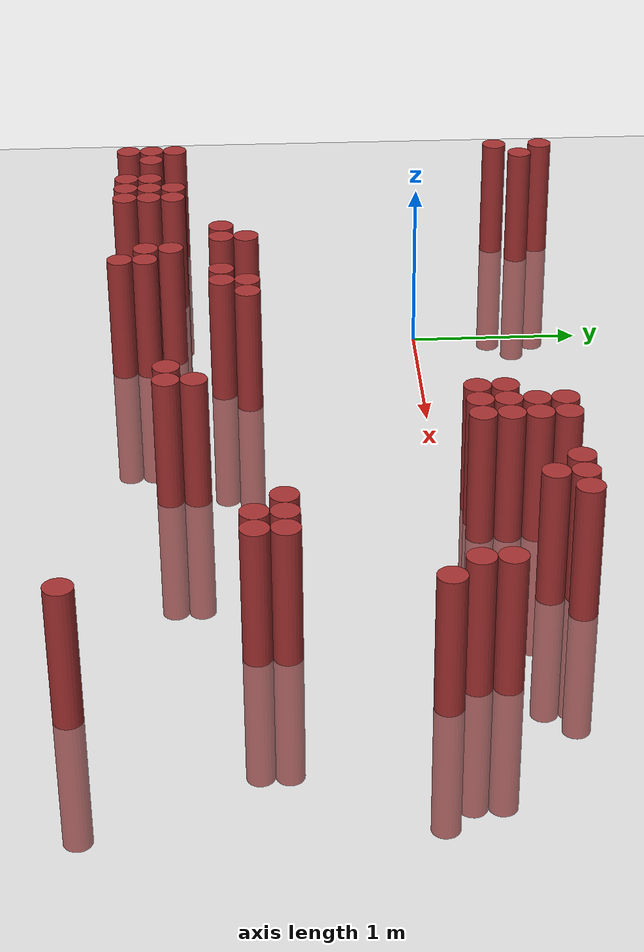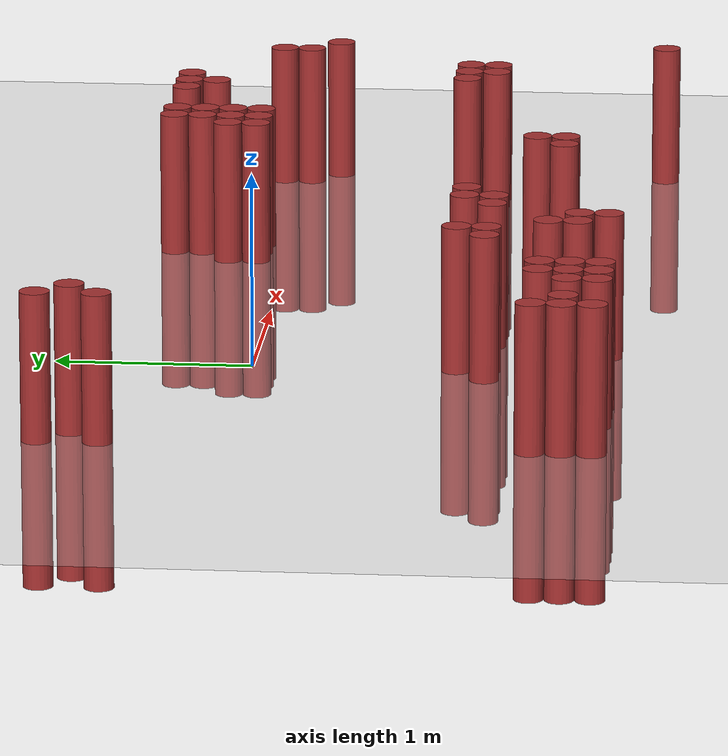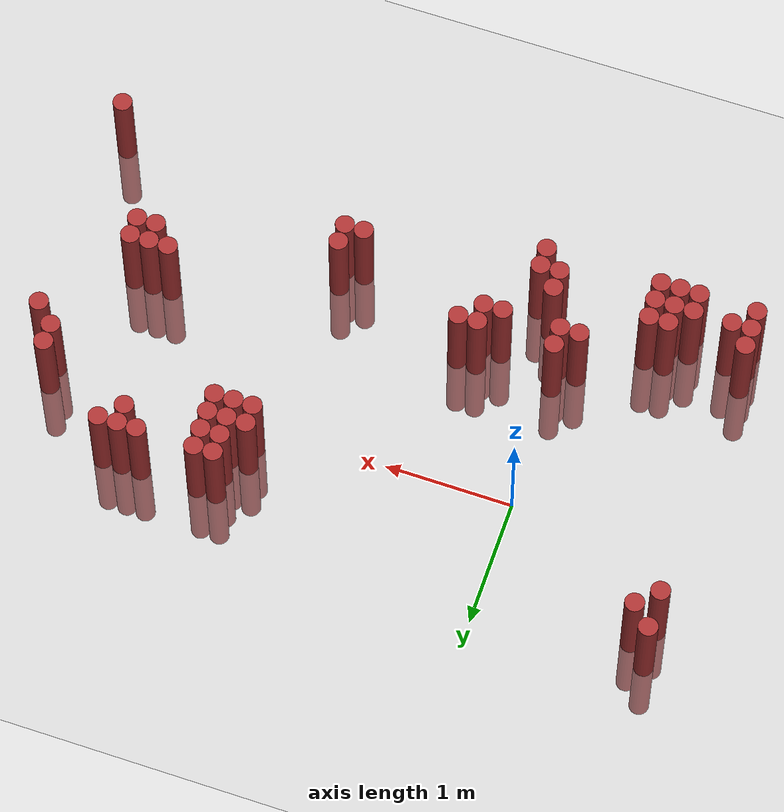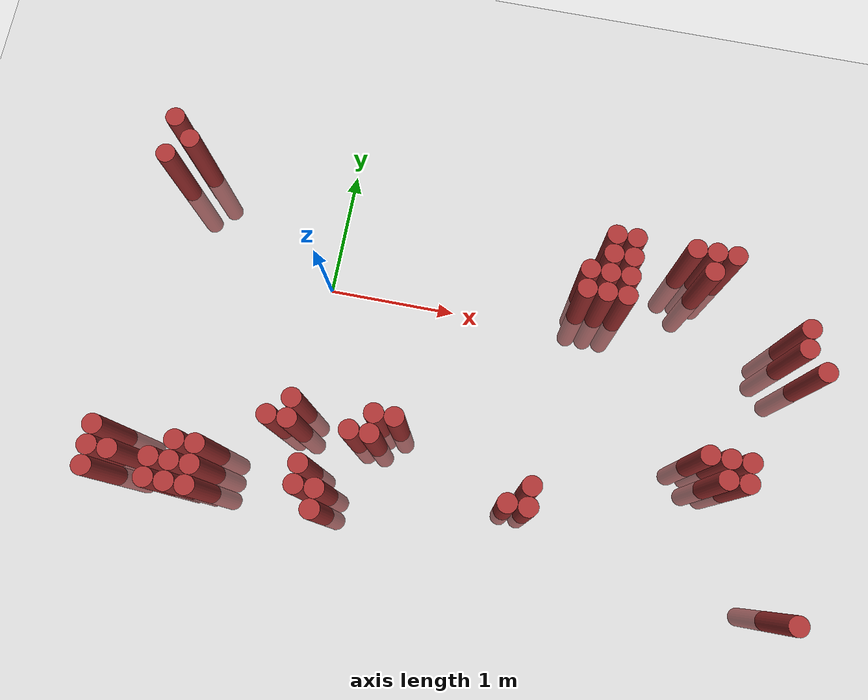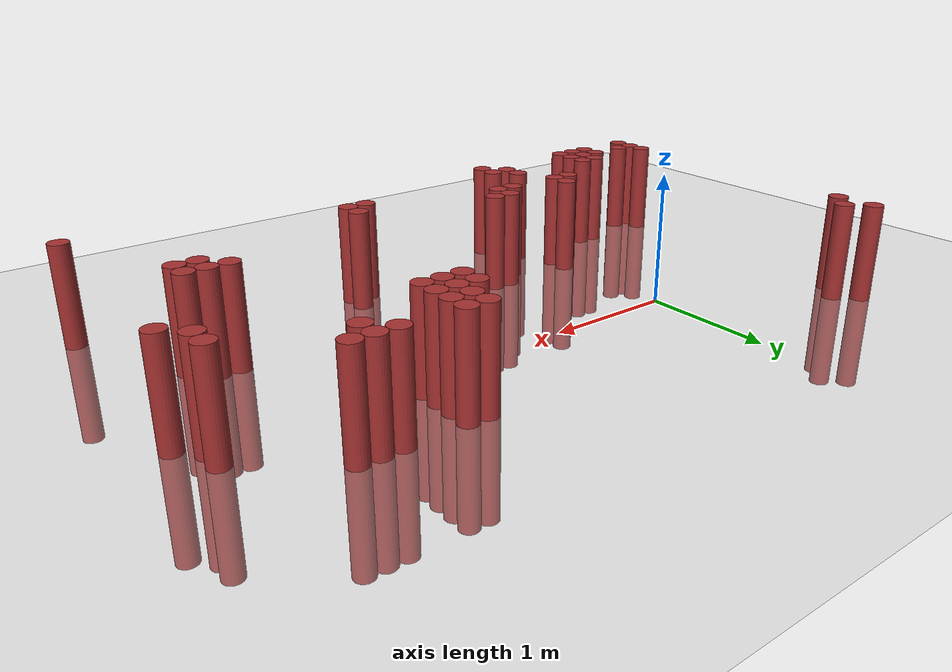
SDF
<sdf version="1.6">
 <world name="default">
  <model name="ground_plane">
   <static>1</static>
   <link name="link">
    <collision name="collision">
     <geometry><plane><normal>0 0 1</normal><size>100 100</size></plane></geometry>
     <surface><friction><ode><mu>100</mu><mu2>50</mu2></ode></friction></surface>
    </collision>
    <visual name="visual">
     <cast_shadows>0</cast_shadows>
     <geometry><plane><normal>0 0 1</normal><size>100 100</size></plane></geometry>
     <material>
      <script><uri>file://media/materials/scripts/gazebo.material</uri><name>Gazebo/Grey</name></script>
     </material>
    </visual>
   </link>
  </model>
  <model name="unit_cylinder_338">
   <static>1</static>
   <pose>-1.325000 -1.775000 0.000000 0.000000 0.000000 0.000000</pose>
   <link name="link">
    <inertial>
     <mass>1</mass>
     <inertia><ixx>0.145833</ixx><ixy>0</ixy><ixz>0</ixz><iyy>0.145833</iyy><iyz>0</iyz><izz>0.125</izz></inertia>
    </inertial>
    <collision name="collision">
     <geometry><cylinder><radius>0.075000</radius><length>1.5</length></cylinder></geometry>
    </collision>
    <visual name="visual">
     <geometry><cylinder><radius>0.075000</radius><length>1.5</length></cylinder></geometry>
     <material>
      <ambient>0.648000 0.192000 0.192000 1</ambient>
      <diffuse>0.648000 0.192000 0.192000 1</diffuse>
     </material>
     <material>
      <script><name>Gazebo/Grey</name><uri>file://media/materials/scripts/gazebo.material</uri></script>
     </material>
    </visual>
   </link>
  </model>
  <model name="unit_cylinder_339">
   <static>1</static>
   <pose>-1.325000 -1.625000 0.000000 0.000000 0.000000 0.000000</pose>
   <link name="link">
    <inertial>
     <mass>1</mass>
     <inertia><ixx>0.145833</ixx><ixy>0</ixy><ixz>0</ixz><iyy>0.145833</iyy><iyz>0</iyz><izz>0.125</izz></inertia>
    </inertial>
    <collision name="collision">
     <geometry><cylinder><radius>0.075000</radius><length>1.5</length></cylinder></geometry>
    </collision>
    <visual name="visual">
     <geometry><cylinder><radius>0.075000</radius><length>1.5</length></cylinder></geometry>
     <material>
      <ambient>0.648000 0.192000 0.192000 1</ambient>
      <diffuse>0.648000 0.192000 0.192000 1</diffuse>
     </material>
     <material>
      <script><name>Gazebo/Grey</name><uri>file://media/materials/scripts/gazebo.material</uri></script>
     </material>
    </visual>
   </link>
  </model>
  <model name="unit_cylinder_340">
   <static>1</static>
   <pose>-1.325000 -1.475000 0.000000 0.000000 0.000000 0.000000</pose>
   <link name="link">
    <inertial>
     <mass>1</mass>
     <inertia><ixx>0.145833</ixx><ixy>0</ixy><ixz>0</ixz><iyy>0.145833</iyy><iyz>0</iyz><izz>0.125</izz></inertia>
    </inertial>
    <collision name="collision">
     <geometry><cylinder><radius>0.075000</radius><length>1.5</length></cylinder></geometry>
    </collision>
    <visual name="visual">
     <geometry><cylinder><radius>0.075000</radius><length>1.5</length></cylinder></geometry>
     <material>
      <ambient>0.648000 0.192000 0.192000 1</ambient>
      <diffuse>0.648000 0.192000 0.192000 1</diffuse>
     </material>
     <material>
      <script><name>Gazebo/Grey</name><uri>file://media/materials/scripts/gazebo.material</uri></script>
     </material>
    </visual>
   </link>
  </model>
  <model name="unit_cylinder_341">
   <static>1</static>
   <pose>-1.325000 0.625000 0.000000 0.000000 0.000000 0.000000</pose>
   <link name="link">
    <inertial>
     <mass>1</mass>
     <inertia><ixx>0.145833</ixx><ixy>0</ixy><ixz>0</ixz><iyy>0.145833</iyy><iyz>0</iyz><izz>0.125</izz></inertia>
    </inertial>
    <collision name="collision">
     <geometry><cylinder><radius>0.075000</radius><length>1.5</length></cylinder></geometry>
    </collision>
    <visual name="visual">
     <geometry><cylinder><radius>0.075000</radius><length>1.5</length></cylinder></geometry>
     <material>
      <ambient>0.648000 0.192000 0.192000 1</ambient>
      <diffuse>0.648000 0.192000 0.192000 1</diffuse>
     </material>
     <material>
      <script><name>Gazebo/Grey</name><uri>file://media/materials/scripts/gazebo.material</uri></script>
     </material>
    </visual>
   </link>
  </model>
  <model name="unit_cylinder_342">
   <static>1</static>
   <pose>-1.325000 0.925000 0.000000 0.000000 0.000000 0.000000</pose>
   <link name="link">
    <inertial>
     <mass>1</mass>
     <inertia><ixx>0.145833</ixx><ixy>0</ixy><ixz>0</ixz><iyy>0.145833</iyy><iyz>0</iyz><izz>0.125</izz></inertia>
    </inertial>
    <collision name="collision">
     <geometry><cylinder><radius>0.075000</radius><length>1.5</length></cylinder></geometry>
    </collision>
    <visual name="visual">
     <geometry><cylinder><radius>0.075000</radius><length>1.5</length></cylinder></geometry>
     <material>
      <ambient>0.648000 0.192000 0.192000 1</ambient>
      <diffuse>0.648000 0.192000 0.192000 1</diffuse>
     </material>
     <material>
      <script><name>Gazebo/Grey</name><uri>file://media/materials/scripts/gazebo.material</uri></script>
     </material>
    </visual>
   </link>
  </model>
  <model name="unit_cylinder_350">
   <static>1</static>
   <pose>-1.175000 -1.625000 0.000000 0.000000 0.000000 0.000000</pose>
   <link name="link">
    <inertial>
     <mass>1</mass>
     <inertia><ixx>0.145833</ixx><ixy>0</ixy><ixz>0</ixz><iyy>0.145833</iyy><iyz>0</iyz><izz>0.125</izz></inertia>
    </inertial>
    <collision name="collision">
     <geometry><cylinder><radius>0.075000</radius><length>1.5</length></cylinder></geometry>
    </collision>
    <visual name="visual">
     <geometry><cylinder><radius>0.075000</radius><length>1.5</length></cylinder></geometry>
     <material>
      <ambient>0.648000 0.192000 0.192000 1</ambient>
      <diffuse>0.648000 0.192000 0.192000 1</diffuse>
     </material>
     <material>
      <script><name>Gazebo/Grey</name><uri>file://media/materials/scripts/gazebo.material</uri></script>
     </material>
    </visual>
   </link>
  </model>
  <model name="unit_cylinder_351">
   <static>1</static>
   <pose>-1.175000 0.775000 0.000000 0.000000 0.000000 0.000000</pose>
   <link name="link">
    <inertial>
     <mass>1</mass>
     <inertia><ixx>0.145833</ixx><ixy>0</ixy><ixz>0</ixz><iyy>0.145833</iyy><iyz>0</iyz><izz>0.125</izz></inertia>
    </inertial>
    <collision name="collision">
     <geometry><cylinder><radius>0.075000</radius><length>1.5</length></cylinder></geometry>
    </collision>
    <visual name="visual">
     <geometry><cylinder><radius>0.075000</radius><length>1.5</length></cylinder></geometry>
     <material>
      <ambient>0.648000 0.192000 0.192000 1</ambient>
      <diffuse>0.648000 0.192000 0.192000 1</diffuse>
     </material>
     <material>
      <script><name>Gazebo/Grey</name><uri>file://media/materials/scripts/gazebo.material</uri></script>
     </material>
    </visual>
   </link>
  </model>
  <model name="unit_cylinder_358">
   <static>1</static>
   <pose>-0.875000 -1.775000 0.000000 0.000000 0.000000 0.000000</pose>
   <link name="link">
    <inertial>
     <mass>1</mass>
     <inertia><ixx>0.145833</ixx><ixy>0</ixy><ixz>0</ixz><iyy>0.145833</iyy><iyz>0</iyz><izz>0.125</izz></inertia>
    </inertial>
    <collision name="collision">
     <geometry><cylinder><radius>0.075000</radius><length>1.5</length></cylinder></geometry>
    </collision>
    <visual name="visual">
     <geometry><cylinder><radius>0.075000</radius><length>1.5</length></cylinder></geometry>
     <material>
      <ambient>0.648000 0.192000 0.192000 1</ambient>
      <diffuse>0.648000 0.192000 0.192000 1</diffuse>
     </material>
     <material>
      <script><name>Gazebo/Grey</name><uri>file://media/materials/scripts/gazebo.material</uri></script>
     </material>
    </visual>
   </link>
  </model>
  <model name="unit_cylinder_359">
   <static>1</static>
   <pose>-0.875000 -1.625000 0.000000 0.000000 0.000000 0.000000</pose>
   <link name="link">
    <inertial>
     <mass>1</mass>
     <inertia><ixx>0.145833</ixx><ixy>0</ixy><ixz>0</ixz><iyy>0.145833</iyy><iyz>0</iyz><izz>0.125</izz></inertia>
    </inertial>
    <collision name="collision">
     <geometry><cylinder><radius>0.075000</radius><length>1.5</length></cylinder></geometry>
    </collision>
    <visual name="visual">
     <geometry><cylinder><radius>0.075000</radius><length>1.5</length></cylinder></geometry>
     <material>
      <ambient>0.648000 0.192000 0.192000 1</ambient>
      <diffuse>0.648000 0.192000 0.192000 1</diffuse>
     </material>
     <material>
      <script><name>Gazebo/Grey</name><uri>file://media/materials/scripts/gazebo.material</uri></script>
     </material>
    </visual>
   </link>
  </model>
  <model name="unit_cylinder_361">
   <static>1</static>
   <pose>-0.725000 -1.775000 0.000000 0.000000 0.000000 0.000000</pose>
   <link name="link">
    <inertial>
     <mass>1</mass>
     <inertia><ixx>0.145833</ixx><ixy>0</ixy><ixz>0</ixz><iyy>0.145833</iyy><iyz>0</iyz><izz>0.125</izz></inertia>
    </inertial>
    <collision name="collision">
     <geometry><cylinder><radius>0.075000</radius><length>1.5</length></cylinder></geometry>
    </collision>
    <visual name="visual">
     <geometry><cylinder><radius>0.075000</radius><length>1.5</length></cylinder></geometry>
     <material>
      <ambient>0.648000 0.192000 0.192000 1</ambient>
      <diffuse>0.648000 0.192000 0.192000 1</diffuse>
     </material>
     <material>
      <script><name>Gazebo/Grey</name><uri>file://media/materials/scripts/gazebo.material</uri></script>
     </material>
    </visual>
   </link>
  </model>
  <model name="unit_cylinder_362">
   <static>1</static>
   <pose>-0.725000 -1.625000 0.000000 0.000000 0.000000 0.000000</pose>
   <link name="link">
    <inertial>
     <mass>1</mass>
     <inertia><ixx>0.145833</ixx><ixy>0</ixy><ixz>0</ixz><iyy>0.145833</iyy><iyz>0</iyz><izz>0.125</izz></inertia>
    </inertial>
    <collision name="collision">
     <geometry><cylinder><radius>0.075000</radius><length>1.5</length></cylinder></geometry>
    </collision>
    <visual name="visual">
     <geometry><cylinder><radius>0.075000</radius><length>1.5</length></cylinder></geometry>
     <material>
      <ambient>0.648000 0.192000 0.192000 1</ambient>
      <diffuse>0.648000 0.192000 0.192000 1</diffuse>
     </material>
     <material>
      <script><name>Gazebo/Grey</name><uri>file://media/materials/scripts/gazebo.material</uri></script>
     </material>
    </visual>
   </link>
  </model>
  <model name="unit_cylinder_363">
   <static>1</static>
   <pose>-0.725000 -1.475000 0.000000 0.000000 0.000000 0.000000</pose>
   <link name="link">
    <inertial>
     <mass>1</mass>
     <inertia><ixx>0.145833</ixx><ixy>0</ixy><ixz>0</ixz><iyy>0.145833</iyy><iyz>0</iyz><izz>0.125</izz></inertia>
    </inertial>
    <collision name="collision">
     <geometry><cylinder><radius>0.075000</radius><length>1.5</length></cylinder></geometry>
    </collision>
    <visual name="visual">
     <geometry><cylinder><radius>0.075000</radius><length>1.5</length></cylinder></geometry>
     <material>
      <ambient>0.648000 0.192000 0.192000 1</ambient>
      <diffuse>0.648000 0.192000 0.192000 1</diffuse>
     </material>
     <material>
      <script><name>Gazebo/Grey</name><uri>file://media/materials/scripts/gazebo.material</uri></script>
     </material>
    </visual>
   </link>
  </model>
  <model name="unit_cylinder_364">
   <static>1</static>
   <pose>-0.575000 -1.775000 0.000000 0.000000 0.000000 0.000000</pose>
   <link name="link">
    <inertial>
     <mass>1</mass>
     <inertia><ixx>0.145833</ixx><ixy>0</ixy><ixz>0</ixz><iyy>0.145833</iyy><iyz>0</iyz><izz>0.125</izz></inertia>
    </inertial>
    <collision name="collision">
     <geometry><cylinder><radius>0.075000</radius><length>1.5</length></cylinder></geometry>
    </collision>
    <visual name="visual">
     <geometry><cylinder><radius>0.075000</radius><length>1.5</length></cylinder></geometry>
     <material>
      <ambient>0.648000 0.192000 0.192000 1</ambient>
      <diffuse>0.648000 0.192000 0.192000 1</diffuse>
     </material>
     <material>
      <script><name>Gazebo/Grey</name><uri>file://media/materials/scripts/gazebo.material</uri></script>
     </material>
    </visual>
   </link>
  </model>
  <model name="unit_cylinder_365">
   <static>1</static>
   <pose>-0.575000 -1.625000 0.000000 0.000000 0.000000 0.000000</pose>
   <link name="link">
    <inertial>
     <mass>1</mass>
     <inertia><ixx>0.145833</ixx><ixy>0</ixy><ixz>0</ixz><iyy>0.145833</iyy><iyz>0</iyz><izz>0.125</izz></inertia>
    </inertial>
    <collision name="collision">
     <geometry><cylinder><radius>0.075000</radius><length>1.5</length></cylinder></geometry>
    </collision>
    <visual name="visual">
     <geometry><cylinder><radius>0.075000</radius><length>1.5</length></cylinder></geometry>
     <material>
      <ambient>0.648000 0.192000 0.192000 1</ambient>
      <diffuse>0.648000 0.192000 0.192000 1</diffuse>
     </material>
     <material>
      <script><name>Gazebo/Grey</name><uri>file://media/materials/scripts/gazebo.material</uri></script>
     </material>
    </visual>
   </link>
  </model>
  <model name="unit_cylinder_366">
   <static>1</static>
   <pose>-0.575000 -1.475000 0.000000 0.000000 0.000000 0.000000</pose>
   <link name="link">
    <inertial>
     <mass>1</mass>
     <inertia><ixx>0.145833</ixx><ixy>0</ixy><ixz>0</ixz><iyy>0.145833</iyy><iyz>0</iyz><izz>0.125</izz></inertia>
    </inertial>
    <collision name="collision">
     <geometry><cylinder><radius>0.075000</radius><length>1.5</length></cylinder></geometry>
    </collision>
    <visual name="visual">
     <geometry><cylinder><radius>0.075000</radius><length>1.5</length></cylinder></geometry>
     <material>
      <ambient>0.648000 0.192000 0.192000 1</ambient>
      <diffuse>0.648000 0.192000 0.192000 1</diffuse>
     </material>
     <material>
      <script><name>Gazebo/Grey</name><uri>file://media/materials/scripts/gazebo.material</uri></script>
     </material>
    </visual>
   </link>
  </model>
  <model name="unit_cylinder_370">
   <static>1</static>
   <pose>-0.125000 -1.175000 0.000000 0.000000 0.000000 0.000000</pose>
   <link name="link">
    <inertial>
     <mass>1</mass>
     <inertia><ixx>0.145833</ixx><ixy>0</ixy><ixz>0</ixz><iyy>0.145833</iyy><iyz>0</iyz><izz>0.125</izz></inertia>
    </inertial>
    <collision name="collision">
     <geometry><cylinder><radius>0.075000</radius><length>1.5</length></cylinder></geometry>
    </collision>
    <visual name="visual">
     <geometry><cylinder><radius>0.075000</radius><length>1.5</length></cylinder></geometry>
     <material>
      <ambient>0.648000 0.192000 0.192000 1</ambient>
      <diffuse>0.648000 0.192000 0.192000 1</diffuse>
     </material>
     <material>
      <script><name>Gazebo/Grey</name><uri>file://media/materials/scripts/gazebo.material</uri></script>
     </material>
    </visual>
   </link>
  </model>
  <model name="unit_cylinder_374">
   <static>1</static>
   <pose>0.025000 -1.175000 0.000000 0.000000 0.000000 0.000000</pose>
   <link name="link">
    <inertial>
     <mass>1</mass>
     <inertia><ixx>0.145833</ixx><ixy>0</ixy><ixz>0</ixz><iyy>0.145833</iyy><iyz>0</iyz><izz>0.125</izz></inertia>
    </inertial>
    <collision name="collision">
     <geometry><cylinder><radius>0.075000</radius><length>1.5</length></cylinder></geometry>
    </collision>
    <visual name="visual">
     <geometry><cylinder><radius>0.075000</radius><length>1.5</length></cylinder></geometry>
     <material>
      <ambient>0.648000 0.192000 0.192000 1</ambient>
      <diffuse>0.648000 0.192000 0.192000 1</diffuse>
     </material>
     <material>
      <script><name>Gazebo/Grey</name><uri>file://media/materials/scripts/gazebo.material</uri></script>
     </material>
    </visual>
   </link>
  </model>
  <model name="unit_cylinder_375">
   <static>1</static>
   <pose>0.025000 -1.025000 0.000000 0.000000 0.000000 0.000000</pose>
   <link name="link">
    <inertial>
     <mass>1</mass>
     <inertia><ixx>0.145833</ixx><ixy>0</ixy><ixz>0</ixz><iyy>0.145833</iyy><iyz>0</iyz><izz>0.125</izz></inertia>
    </inertial>
    <collision name="collision">
     <geometry><cylinder><radius>0.075000</radius><length>1.5</length></cylinder></geometry>
    </collision>
    <visual name="visual">
     <geometry><cylinder><radius>0.075000</radius><length>1.5</length></cylinder></geometry>
     <material>
      <ambient>0.648000 0.192000 0.192000 1</ambient>
      <diffuse>0.648000 0.192000 0.192000 1</diffuse>
     </material>
     <material>
      <script><name>Gazebo/Grey</name><uri>file://media/materials/scripts/gazebo.material</uri></script>
     </material>
    </visual>
   </link>
  </model>
  <model name="unit_cylinder_381">
   <static>1</static>
   <pose>0.175000 -1.625000 0.000000 0.000000 0.000000 0.000000</pose>
   <link name="link">
    <inertial>
     <mass>1</mass>
     <inertia><ixx>0.145833</ixx><ixy>0</ixy><ixz>0</ixz><iyy>0.145833</iyy><iyz>0</iyz><izz>0.125</izz></inertia>
    </inertial>
    <collision name="collision">
     <geometry><cylinder><radius>0.075000</radius><length>1.5</length></cylinder></geometry>
    </collision>
    <visual name="visual">
     <geometry><cylinder><radius>0.075000</radius><length>1.5</length></cylinder></geometry>
     <material>
      <ambient>0.648000 0.192000 0.192000 1</ambient>
      <diffuse>0.648000 0.192000 0.192000 1</diffuse>
     </material>
     <material>
      <script><name>Gazebo/Grey</name><uri>file://media/materials/scripts/gazebo.material</uri></script>
     </material>
    </visual>
   </link>
  </model>
  <model name="unit_cylinder_382">
   <static>1</static>
   <pose>0.175000 -1.475000 0.000000 0.000000 0.000000 0.000000</pose>
   <link name="link">
    <inertial>
     <mass>1</mass>
     <inertia><ixx>0.145833</ixx><ixy>0</ixy><ixz>0</ixz><iyy>0.145833</iyy><iyz>0</iyz><izz>0.125</izz></inertia>
    </inertial>
    <collision name="collision">
     <geometry><cylinder><radius>0.075000</radius><length>1.5</length></cylinder></geometry>
    </collision>
    <visual name="visual">
     <geometry><cylinder><radius>0.075000</radius><length>1.5</length></cylinder></geometry>
     <material>
      <ambient>0.648000 0.192000 0.192000 1</ambient>
      <diffuse>0.648000 0.192000 0.192000 1</diffuse>
     </material>
     <material>
      <script><name>Gazebo/Grey</name><uri>file://media/materials/scripts/gazebo.material</uri></script>
     </material>
    </visual>
   </link>
  </model>
  <model name="unit_cylinder_387">
   <static>1</static>
   <pose>0.325000 -1.775000 0.000000 0.000000 0.000000 0.000000</pose>
   <link name="link">
    <inertial>
     <mass>1</mass>
     <inertia><ixx>0.145833</ixx><ixy>0</ixy><ixz>0</ixz><iyy>0.145833</iyy><iyz>0</iyz><izz>0.125</izz></inertia>
    </inertial>
    <collision name="collision">
     <geometry><cylinder><radius>0.075000</radius><length>1.5</length></cylinder></geometry>
    </collision>
    <visual name="visual">
     <geometry><cylinder><radius>0.075000</radius><length>1.5</length></cylinder></geometry>
     <material>
      <ambient>0.648000 0.192000 0.192000 1</ambient>
      <diffuse>0.648000 0.192000 0.192000 1</diffuse>
     </material>
     <material>
      <script><name>Gazebo/Grey</name><uri>file://media/materials/scripts/gazebo.material</uri></script>
     </material>
    </visual>
   </link>
  </model>
  <model name="unit_cylinder_388">
   <static>1</static>
   <pose>0.325000 -1.625000 0.000000 0.000000 0.000000 0.000000</pose>
   <link name="link">
    <inertial>
     <mass>1</mass>
     <inertia><ixx>0.145833</ixx><ixy>0</ixy><ixz>0</ixz><iyy>0.145833</iyy><iyz>0</iyz><izz>0.125</izz></inertia>
    </inertial>
    <collision name="collision">
     <geometry><cylinder><radius>0.075000</radius><length>1.5</length></cylinder></geometry>
    </collision>
    <visual name="visual">
     <geometry><cylinder><radius>0.075000</radius><length>1.5</length></cylinder></geometry>
     <material>
      <ambient>0.648000 0.192000 0.192000 1</ambient>
      <diffuse>0.648000 0.192000 0.192000 1</diffuse>
     </material>
     <material>
      <script><name>Gazebo/Grey</name><uri>file://media/materials/scripts/gazebo.material</uri></script>
     </material>
    </visual>
   </link>
  </model>
  <model name="unit_cylinder_390">
   <static>1</static>
   <pose>0.475000 -1.175000 0.000000 0.000000 0.000000 0.000000</pose>
   <link name="link">
    <inertial>
     <mass>1</mass>
     <inertia><ixx>0.145833</ixx><ixy>0</ixy><ixz>0</ixz><iyy>0.145833</iyy><iyz>0</iyz><izz>0.125</izz></inertia>
    </inertial>
    <collision name="collision">
     <geometry><cylinder><radius>0.075000</radius><length>1.5</length></cylinder></geometry>
    </collision>
    <visual name="visual">
     <geometry><cylinder><radius>0.075000</radius><length>1.5</length></cylinder></geometry>
     <material>
      <ambient>0.648000 0.192000 0.192000 1</ambient>
      <diffuse>0.648000 0.192000 0.192000 1</diffuse>
     </material>
     <material>
      <script><name>Gazebo/Grey</name><uri>file://media/materials/scripts/gazebo.material</uri></script>
     </material>
    </visual>
   </link>
  </model>
  <model name="unit_cylinder_391">
   <static>1</static>
   <pose>0.625000 -1.175000 0.000000 0.000000 0.000000 0.000000</pose>
   <link name="link">
    <inertial>
     <mass>1</mass>
     <inertia><ixx>0.145833</ixx><ixy>0</ixy><ixz>0</ixz><iyy>0.145833</iyy><iyz>0</iyz><izz>0.125</izz></inertia>
    </inertial>
    <collision name="collision">
     <geometry><cylinder><radius>0.075000</radius><length>1.5</length></cylinder></geometry>
    </collision>
    <visual name="visual">
     <geometry><cylinder><radius>0.075000</radius><length>1.5</length></cylinder></geometry>
     <material>
      <ambient>0.648000 0.192000 0.192000 1</ambient>
      <diffuse>0.648000 0.192000 0.192000 1</diffuse>
     </material>
     <material>
      <script><name>Gazebo/Grey</name><uri>file://media/materials/scripts/gazebo.material</uri></script>
     </material>
    </visual>
   </link>
  </model>
  <model name="unit_cylinder_392">
   <static>1</static>
   <pose>0.625000 -1.025000 0.000000 0.000000 0.000000 0.000000</pose>
   <link name="link">
    <inertial>
     <mass>1</mass>
     <inertia><ixx>0.145833</ixx><ixy>0</ixy><ixz>0</ixz><iyy>0.145833</iyy><iyz>0</iyz><izz>0.125</izz></inertia>
    </inertial>
    <collision name="collision">
     <geometry><cylinder><radius>0.075000</radius><length>1.5</length></cylinder></geometry>
    </collision>
    <visual name="visual">
     <geometry><cylinder><radius>0.075000</radius><length>1.5</length></cylinder></geometry>
     <material>
      <ambient>0.648000 0.192000 0.192000 1</ambient>
      <diffuse>0.648000 0.192000 0.192000 1</diffuse>
     </material>
     <material>
      <script><name>Gazebo/Grey</name><uri>file://media/materials/scripts/gazebo.material</uri></script>
     </material>
    </visual>
   </link>
  </model>
  <model name="unit_cylinder_394">
   <static>1</static>
   <pose>0.775000 -1.025000 0.000000 0.000000 0.000000 0.000000</pose>
   <link name="link">
    <inertial>
     <mass>1</mass>
     <inertia><ixx>0.145833</ixx><ixy>0</ixy><ixz>0</ixz><iyy>0.145833</iyy><iyz>0</iyz><izz>0.125</izz></inertia>
    </inertial>
    <collision name="collision">
     <geometry><cylinder><radius>0.075000</radius><length>1.5</length></cylinder></geometry>
    </collision>
    <visual name="visual">
     <geometry><cylinder><radius>0.075000</radius><length>1.5</length></cylinder></geometry>
     <material>
      <ambient>0.648000 0.192000 0.192000 1</ambient>
      <diffuse>0.648000 0.192000 0.192000 1</diffuse>
     </material>
     <material>
      <script><name>Gazebo/Grey</name><uri>file://media/materials/scripts/gazebo.material</uri></script>
     </material>
    </visual>
   </link>
  </model>
  <model name="unit_cylinder_423">
   <static>1</static>
   <pose>1.675000 -1.475000 0.000000 0.000000 0.000000 0.000000</pose>
   <link name="link">
    <inertial>
     <mass>1</mass>
     <inertia><ixx>0.145833</ixx><ixy>0</ixy><ixz>0</ixz><iyy>0.145833</iyy><iyz>0</iyz><izz>0.125</izz></inertia>
    </inertial>
    <collision name="collision">
     <geometry><cylinder><radius>0.075000</radius><length>1.5</length></cylinder></geometry>
    </collision>
    <visual name="visual">
     <geometry><cylinder><radius>0.075000</radius><length>1.5</length></cylinder></geometry>
     <material>
      <ambient>0.648000 0.192000 0.192000 1</ambient>
      <diffuse>0.648000 0.192000 0.192000 1</diffuse>
     </material>
     <material>
      <script><name>Gazebo/Grey</name><uri>file://media/materials/scripts/gazebo.material</uri></script>
     </material>
    </visual>
   </link>
  </model>
  <model name="unit_cylinder_425">
   <static>1</static>
   <pose>1.825000 -1.475000 0.000000 0.000000 0.000000 0.000000</pose>
   <link name="link">
    <inertial>
     <mass>1</mass>
     <inertia><ixx>0.145833</ixx><ixy>0</ixy><ixz>0</ixz><iyy>0.145833</iyy><iyz>0</iyz><izz>0.125</izz></inertia>
    </inertial>
    <collision name="collision">
     <geometry><cylinder><radius>0.075000</radius><length>1.5</length></cylinder></geometry>
    </collision>
    <visual name="visual">
     <geometry><cylinder><radius>0.075000</radius><length>1.5</length></cylinder></geometry>
     <material>
      <ambient>0.648000 0.192000 0.192000 1</ambient>
      <diffuse>0.648000 0.192000 0.192000 1</diffuse>
     </material>
     <material>
      <script><name>Gazebo/Grey</name><uri>file://media/materials/scripts/gazebo.material</uri></script>
     </material>
    </visual>
   </link>
  </model>
  <model name="unit_cylinder_426">
   <static>1</static>
   <pose>1.825000 -1.325000 0.000000 0.000000 0.000000 0.000000</pose>
   <link name="link">
    <inertial>
     <mass>1</mass>
     <inertia><ixx>0.145833</ixx><ixy>0</ixy><ixz>0</ixz><iyy>0.145833</iyy><iyz>0</iyz><izz>0.125</izz></inertia>
    </inertial>
    <collision name="collision">
     <geometry><cylinder><radius>0.075000</radius><length>1.5</length></cylinder></geometry>
    </collision>
    <visual name="visual">
     <geometry><cylinder><radius>0.075000</radius><length>1.5</length></cylinder></geometry>
     <material>
      <ambient>0.648000 0.192000 0.192000 1</ambient>
      <diffuse>0.648000 0.192000 0.192000 1</diffuse>
     </material>
     <material>
      <script><name>Gazebo/Grey</name><uri>file://media/materials/scripts/gazebo.material</uri></script>
     </material>
    </visual>
   </link>
  </model>
  <model name="unit_cylinder_427">
   <static>1</static>
   <pose>1.975000 0.175000 0.000000 0.000000 0.000000 0.000000</pose>
   <link name="link">
    <inertial>
     <mass>1</mass>
     <inertia><ixx>0.145833</ixx><ixy>0</ixy><ixz>0</ixz><iyy>0.145833</iyy><iyz>0</iyz><izz>0.125</izz></inertia>
    </inertial>
    <collision name="collision">
     <geometry><cylinder><radius>0.075000</radius><length>1.5</length></cylinder></geometry>
    </collision>
    <visual name="visual">
     <geometry><cylinder><radius>0.075000</radius><length>1.5</length></cylinder></geometry>
     <material>
      <ambient>0.648000 0.192000 0.192000 1</ambient>
      <diffuse>0.648000 0.192000 0.192000 1</diffuse>
     </material>
     <material>
      <script><name>Gazebo/Grey</name><uri>file://media/materials/scripts/gazebo.material</uri></script>
     </material>
    </visual>
   </link>
  </model>
  <model name="unit_cylinder_428">
   <static>1</static>
   <pose>1.975000 0.325000 0.000000 0.000000 0.000000 0.000000</pose>
   <link name="link">
    <inertial>
     <mass>1</mass>
     <inertia><ixx>0.145833</ixx><ixy>0</ixy><ixz>0</ixz><iyy>0.145833</iyy><iyz>0</iyz><izz>0.125</izz></inertia>
    </inertial>
    <collision name="collision">
     <geometry><cylinder><radius>0.075000</radius><length>1.5</length></cylinder></geometry>
    </collision>
    <visual name="visual">
     <geometry><cylinder><radius>0.075000</radius><length>1.5</length></cylinder></geometry>
     <material>
      <ambient>0.648000 0.192000 0.192000 1</ambient>
      <diffuse>0.648000 0.192000 0.192000 1</diffuse>
     </material>
     <material>
      <script><name>Gazebo/Grey</name><uri>file://media/materials/scripts/gazebo.material</uri></script>
     </material>
    </visual>
   </link>
  </model>
  <model name="unit_cylinder_429">
   <static>1</static>
   <pose>2.125000 0.175000 0.000000 0.000000 0.000000 0.000000</pose>
   <link name="link">
    <inertial>
     <mass>1</mass>
     <inertia><ixx>0.145833</ixx><ixy>0</ixy><ixz>0</ixz><iyy>0.145833</iyy><iyz>0</iyz><izz>0.125</izz></inertia>
    </inertial>
    <collision name="collision">
     <geometry><cylinder><radius>0.075000</radius><length>1.5</length></cylinder></geometry>
    </collision>
    <visual name="visual">
     <geometry><cylinder><radius>0.075000</radius><length>1.5</length></cylinder></geometry>
     <material>
      <ambient>0.648000 0.192000 0.192000 1</ambient>
      <diffuse>0.648000 0.192000 0.192000 1</diffuse>
     </material>
     <material>
      <script><name>Gazebo/Grey</name><uri>file://media/materials/scripts/gazebo.material</uri></script>
     </material>
    </visual>
   </link>
  </model>
  <model name="unit_cylinder_430">
   <static>1</static>
   <pose>2.125000 0.325000 0.000000 0.000000 0.000000 0.000000</pose>
   <link name="link">
    <inertial>
     <mass>1</mass>
     <inertia><ixx>0.145833</ixx><ixy>0</ixy><ixz>0</ixz><iyy>0.145833</iyy><iyz>0</iyz><izz>0.125</izz></inertia>
    </inertial>
    <collision name="collision">
     <geometry><cylinder><radius>0.075000</radius><length>1.5</length></cylinder></geometry>
    </collision>
    <visual name="visual">
     <geometry><cylinder><radius>0.075000</radius><length>1.5</length></cylinder></geometry>
     <material>
      <ambient>0.648000 0.192000 0.192000 1</ambient>
      <diffuse>0.648000 0.192000 0.192000 1</diffuse>
     </material>
     <material>
      <script><name>Gazebo/Grey</name><uri>file://media/materials/scripts/gazebo.material</uri></script>
     </material>
    </visual>
   </link>
  </model>
  <model name="unit_cylinder_431">
   <static>1</static>
   <pose>2.125000 0.475000 0.000000 0.000000 0.000000 0.000000</pose>
   <link name="link">
    <inertial>
     <mass>1</mass>
     <inertia><ixx>0.145833</ixx><ixy>0</ixy><ixz>0</ixz><iyy>0.145833</iyy><iyz>0</iyz><izz>0.125</izz></inertia>
    </inertial>
    <collision name="collision">
     <geometry><cylinder><radius>0.075000</radius><length>1.5</length></cylinder></geometry>
    </collision>
    <visual name="visual">
     <geometry><cylinder><radius>0.075000</radius><length>1.5</length></cylinder></geometry>
     <material>
      <ambient>0.648000 0.192000 0.192000 1</ambient>
      <diffuse>0.648000 0.192000 0.192000 1</diffuse>
     </material>
     <material>
      <script><name>Gazebo/Grey</name><uri>file://media/materials/scripts/gazebo.material</uri></script>
     </material>
    </visual>
   </link>
  </model>
  <model name="unit_cylinder_432">
   <static>1</static>
   <pose>2.125000 0.625000 0.000000 0.000000 0.000000 0.000000</pose>
   <link name="link">
    <inertial>
     <mass>1</mass>
     <inertia><ixx>0.145833</ixx><ixy>0</ixy><ixz>0</ixz><iyy>0.145833</iyy><iyz>0</iyz><izz>0.125</izz></inertia>
    </inertial>
    <collision name="collision">
     <geometry><cylinder><radius>0.075000</radius><length>1.5</length></cylinder></geometry>
    </collision>
    <visual name="visual">
     <geometry><cylinder><radius>0.075000</radius><length>1.5</length></cylinder></geometry>
     <material>
      <ambient>0.648000 0.192000 0.192000 1</ambient>
      <diffuse>0.648000 0.192000 0.192000 1</diffuse>
     </material>
     <material>
      <script><name>Gazebo/Grey</name><uri>file://media/materials/scripts/gazebo.material</uri></script>
     </material>
    </visual>
   </link>
  </model>
  <model name="unit_cylinder_433">
   <static>1</static>
   <pose>2.275000 0.175000 0.000000 0.000000 0.000000 0.000000</pose>
   <link name="link">
    <inertial>
     <mass>1</mass>
     <inertia><ixx>0.145833</ixx><ixy>0</ixy><ixz>0</ixz><iyy>0.145833</iyy><iyz>0</iyz><izz>0.125</izz></inertia>
    </inertial>
    <collision name="collision">
     <geometry><cylinder><radius>0.075000</radius><length>1.5</length></cylinder></geometry>
    </collision>
    <visual name="visual">
     <geometry><cylinder><radius>0.075000</radius><length>1.5</length></cylinder></geometry>
     <material>
      <ambient>0.648000 0.192000 0.192000 1</ambient>
      <diffuse>0.648000 0.192000 0.192000 1</diffuse>
     </material>
     <material>
      <script><name>Gazebo/Grey</name><uri>file://media/materials/scripts/gazebo.material</uri></script>
     </material>
    </visual>
   </link>
  </model>
  <model name="unit_cylinder_434">
   <static>1</static>
   <pose>2.275000 0.325000 0.000000 0.000000 0.000000 0.000000</pose>
   <link name="link">
    <inertial>
     <mass>1</mass>
     <inertia><ixx>0.145833</ixx><ixy>0</ixy><ixz>0</ixz><iyy>0.145833</iyy><iyz>0</iyz><izz>0.125</izz></inertia>
    </inertial>
    <collision name="collision">
     <geometry><cylinder><radius>0.075000</radius><length>1.5</length></cylinder></geometry>
    </collision>
    <visual name="visual">
     <geometry><cylinder><radius>0.075000</radius><length>1.5</length></cylinder></geometry>
     <material>
      <ambient>0.648000 0.192000 0.192000 1</ambient>
      <diffuse>0.648000 0.192000 0.192000 1</diffuse>
     </material>
     <material>
      <script><name>Gazebo/Grey</name><uri>file://media/materials/scripts/gazebo.material</uri></script>
     </material>
    </visual>
   </link>
  </model>
  <model name="unit_cylinder_435">
   <static>1</static>
   <pose>2.275000 0.475000 0.000000 0.000000 0.000000 0.000000</pose>
   <link name="link">
    <inertial>
     <mass>1</mass>
     <inertia><ixx>0.145833</ixx><ixy>0</ixy><ixz>0</ixz><iyy>0.145833</iyy><iyz>0</iyz><izz>0.125</izz></inertia>
    </inertial>
    <collision name="collision">
     <geometry><cylinder><radius>0.075000</radius><length>1.5</length></cylinder></geometry>
    </collision>
    <visual name="visual">
     <geometry><cylinder><radius>0.075000</radius><length>1.5</length></cylinder></geometry>
     <material>
      <ambient>0.648000 0.192000 0.192000 1</ambient>
      <diffuse>0.648000 0.192000 0.192000 1</diffuse>
     </material>
     <material>
      <script><name>Gazebo/Grey</name><uri>file://media/materials/scripts/gazebo.material</uri></script>
     </material>
    </visual>
   </link>
  </model>
  <model name="unit_cylinder_436">
   <static>1</static>
   <pose>2.275000 0.625000 0.000000 0.000000 0.000000 0.000000</pose>
   <link name="link">
    <inertial>
     <mass>1</mass>
     <inertia><ixx>0.145833</ixx><ixy>0</ixy><ixz>0</ixz><iyy>0.145833</iyy><iyz>0</iyz><izz>0.125</izz></inertia>
    </inertial>
    <collision name="collision">
     <geometry><cylinder><radius>0.075000</radius><length>1.5</length></cylinder></geometry>
    </collision>
    <visual name="visual">
     <geometry><cylinder><radius>0.075000</radius><length>1.5</length></cylinder></geometry>
     <material>
      <ambient>0.648000 0.192000 0.192000 1</ambient>
      <diffuse>0.648000 0.192000 0.192000 1</diffuse>
     </material>
     <material>
      <script><name>Gazebo/Grey</name><uri>file://media/materials/scripts/gazebo.material</uri></script>
     </material>
    </visual>
   </link>
  </model>
  <model name="unit_cylinder_440">
   <static>1</static>
   <pose>2.725000 0.625000 0.000000 0.000000 0.000000 0.000000</pose>
   <link name="link">
    <inertial>
     <mass>1</mass>
     <inertia><ixx>0.145833</ixx><ixy>0</ixy><ixz>0</ixz><iyy>0.145833</iyy><iyz>0</iyz><izz>0.125</izz></inertia>
    </inertial>
    <collision name="collision">
     <geometry><cylinder><radius>0.075000</radius><length>1.5</length></cylinder></geometry>
    </collision>
    <visual name="visual">
     <geometry><cylinder><radius>0.075000</radius><length>1.5</length></cylinder></geometry>
     <material>
      <ambient>0.648000 0.192000 0.192000 1</ambient>
      <diffuse>0.648000 0.192000 0.192000 1</diffuse>
     </material>
     <material>
      <script><name>Gazebo/Grey</name><uri>file://media/materials/scripts/gazebo.material</uri></script>
     </material>
    </visual>
   </link>
  </model>
  <model name="unit_cylinder_441">
   <static>1</static>
   <pose>2.875000 0.475000 0.000000 0.000000 0.000000 0.000000</pose>
   <link name="link">
    <inertial>
     <mass>1</mass>
     <inertia><ixx>0.145833</ixx><ixy>0</ixy><ixz>0</ixz><iyy>0.145833</iyy><iyz>0</iyz><izz>0.125</izz></inertia>
    </inertial>
    <collision name="collision">
     <geometry><cylinder><radius>0.075000</radius><length>1.5</length></cylinder></geometry>
    </collision>
    <visual name="visual">
     <geometry><cylinder><radius>0.075000</radius><length>1.5</length></cylinder></geometry>
     <material>
      <ambient>0.648000 0.192000 0.192000 1</ambient>
      <diffuse>0.648000 0.192000 0.192000 1</diffuse>
     </material>
     <material>
      <script><name>Gazebo/Grey</name><uri>file://media/materials/scripts/gazebo.material</uri></script>
     </material>
    </visual>
   </link>
  </model>
  <model name="unit_cylinder_442">
   <static>1</static>
   <pose>2.875000 0.625000 0.000000 0.000000 0.000000 0.000000</pose>
   <link name="link">
    <inertial>
     <mass>1</mass>
     <inertia><ixx>0.145833</ixx><ixy>0</ixy><ixz>0</ixz><iyy>0.145833</iyy><iyz>0</iyz><izz>0.125</izz></inertia>
    </inertial>
    <collision name="collision">
     <geometry><cylinder><radius>0.075000</radius><length>1.5</length></cylinder></geometry>
    </collision>
    <visual name="visual">
     <geometry><cylinder><radius>0.075000</radius><length>1.5</length></cylinder></geometry>
     <material>
      <ambient>0.648000 0.192000 0.192000 1</ambient>
      <diffuse>0.648000 0.192000 0.192000 1</diffuse>
     </material>
     <material>
      <script><name>Gazebo/Grey</name><uri>file://media/materials/scripts/gazebo.material</uri></script>
     </material>
    </visual>
   </link>
  </model>
  <model name="unit_cylinder_443">
   <static>1</static>
   <pose>3.025000 -0.875000 0.000000 0.000000 0.000000 0.000000</pose>
   <link name="link">
    <inertial>
     <mass>1</mass>
     <inertia><ixx>0.145833</ixx><ixy>0</ixy><ixz>0</ixz><iyy>0.145833</iyy><iyz>0</iyz><izz>0.125</izz></inertia>
    </inertial>
    <collision name="collision">
     <geometry><cylinder><radius>0.075000</radius><length>1.5</length></cylinder></geometry>
    </collision>
    <visual name="visual">
     <geometry><cylinder><radius>0.075000</radius><length>1.5</length></cylinder></geometry>
     <material>
      <ambient>0.648000 0.192000 0.192000 1</ambient>
      <diffuse>0.648000 0.192000 0.192000 1</diffuse>
     </material>
     <material>
      <script><name>Gazebo/Grey</name><uri>file://media/materials/scripts/gazebo.material</uri></script>
     </material>
    </visual>
   </link>
  </model>
  <model name="unit_cylinder_444">
   <static>1</static>
   <pose>3.025000 0.625000 0.000000 0.000000 0.000000 0.000000</pose>
   <link name="link">
    <inertial>
     <mass>1</mass>
     <inertia><ixx>0.145833</ixx><ixy>0</ixy><ixz>0</ixz><iyy>0.145833</iyy><iyz>0</iyz><izz>0.125</izz></inertia>
    </inertial>
    <collision name="collision">
     <geometry><cylinder><radius>0.075000</radius><length>1.5</length></cylinder></geometry>
    </collision>
    <visual name="visual">
     <geometry><cylinder><radius>0.075000</radius><length>1.5</length></cylinder></geometry>
     <material>
      <ambient>0.648000 0.192000 0.192000 1</ambient>
      <diffuse>0.648000 0.192000 0.192000 1</diffuse>
     </material>
     <material>
      <script><name>Gazebo/Grey</name><uri>file://media/materials/scripts/gazebo.material</uri></script>
     </material>
    </visual>
   </link>
  </model>
  <model name="unit_cylinder_445">
   <static>1</static>
   <pose>3.175000 -1.025000 0.000000 0.000000 0.000000 0.000000</pose>
   <link name="link">
    <inertial>
     <mass>1</mass>
     <inertia><ixx>0.145833</ixx><ixy>0</ixy><ixz>0</ixz><iyy>0.145833</iyy><iyz>0</iyz><izz>0.125</izz></inertia>
    </inertial>
    <collision name="collision">
     <geometry><cylinder><radius>0.075000</radius><length>1.5</length></cylinder></geometry>
    </collision>
    <visual name="visual">
     <geometry><cylinder><radius>0.075000</radius><length>1.5</length></cylinder></geometry>
     <material>
      <ambient>0.648000 0.192000 0.192000 1</ambient>
      <diffuse>0.648000 0.192000 0.192000 1</diffuse>
     </material>
     <material>
      <script><name>Gazebo/Grey</name><uri>file://media/materials/scripts/gazebo.material</uri></script>
     </material>
    </visual>
   </link>
  </model>
  <model name="unit_cylinder_446">
   <static>1</static>
   <pose>3.175000 -0.875000 0.000000 0.000000 0.000000 0.000000</pose>
   <link name="link">
    <inertial>
     <mass>1</mass>
     <inertia><ixx>0.145833</ixx><ixy>0</ixy><ixz>0</ixz><iyy>0.145833</iyy><iyz>0</iyz><izz>0.125</izz></inertia>
    </inertial>
    <collision name="collision">
     <geometry><cylinder><radius>0.075000</radius><length>1.5</length></cylinder></geometry>
    </collision>
    <visual name="visual">
     <geometry><cylinder><radius>0.075000</radius><length>1.5</length></cylinder></geometry>
     <material>
      <ambient>0.648000 0.192000 0.192000 1</ambient>
      <diffuse>0.648000 0.192000 0.192000 1</diffuse>
     </material>
     <material>
      <script><name>Gazebo/Grey</name><uri>file://media/materials/scripts/gazebo.material</uri></script>
     </material>
    </visual>
   </link>
  </model>
  <model name="unit_cylinder_447">
   <static>1</static>
   <pose>3.325000 -1.025000 0.000000 0.000000 0.000000 0.000000</pose>
   <link name="link">
    <inertial>
     <mass>1</mass>
     <inertia><ixx>0.145833</ixx><ixy>0</ixy><ixz>0</ixz><iyy>0.145833</iyy><iyz>0</iyz><izz>0.125</izz></inertia>
    </inertial>
    <collision name="collision">
     <geometry><cylinder><radius>0.075000</radius><length>1.5</length></cylinder></geometry>
    </collision>
    <visual name="visual">
     <geometry><cylinder><radius>0.075000</radius><length>1.5</length></cylinder></geometry>
     <material>
      <ambient>0.648000 0.192000 0.192000 1</ambient>
      <diffuse>0.648000 0.192000 0.192000 1</diffuse>
     </material>
     <material>
      <script><name>Gazebo/Grey</name><uri>file://media/materials/scripts/gazebo.material</uri></script>
     </material>
    </visual>
   </link>
  </model>
  <model name="unit_cylinder_448">
   <static>1</static>
   <pose>3.325000 -0.875000 0.000000 0.000000 0.000000 0.000000</pose>
   <link name="link">
    <inertial>
     <mass>1</mass>
     <inertia><ixx>0.145833</ixx><ixy>0</ixy><ixz>0</ixz><iyy>0.145833</iyy><iyz>0</iyz><izz>0.125</izz></inertia>
    </inertial>
    <collision name="collision">
     <geometry><cylinder><radius>0.075000</radius><length>1.5</length></cylinder></geometry>
    </collision>
    <visual name="visual">
     <geometry><cylinder><radius>0.075000</radius><length>1.5</length></cylinder></geometry>
     <material>
      <ambient>0.648000 0.192000 0.192000 1</ambient>
      <diffuse>0.648000 0.192000 0.192000 1</diffuse>
     </material>
     <material>
      <script><name>Gazebo/Grey</name><uri>file://media/materials/scripts/gazebo.material</uri></script>
     </material>
    </visual>
   </link>
  </model>
  <model name="unit_cylinder_451">
   <static>1</static>
   <pose>3.625000 0.025000 0.000000 0.000000 0.000000 0.000000</pose>
   <link name="link">
    <inertial>
     <mass>1</mass>
     <inertia><ixx>0.145833</ixx><ixy>0</ixy><ixz>0</ixz><iyy>0.145833</iyy><iyz>0</iyz><izz>0.125</izz></inertia>
    </inertial>
    <collision name="collision">
     <geometry><cylinder><radius>0.075000</radius><length>1.5</length></cylinder></geometry>
    </collision>
    <visual name="visual">
     <geometry><cylinder><radius>0.075000</radius><length>1.5</length></cylinder></geometry>
     <material>
      <ambient>0.648000 0.192000 0.192000 1</ambient>
      <diffuse>0.648000 0.192000 0.192000 1</diffuse>
     </material>
     <material>
      <script><name>Gazebo/Grey</name><uri>file://media/materials/scripts/gazebo.material</uri></script>
     </material>
    </visual>
   </link>
  </model>
  <model name="unit_cylinder_452">
   <static>1</static>
   <pose>3.625000 0.175000 0.000000 0.000000 0.000000 0.000000</pose>
   <link name="link">
    <inertial>
     <mass>1</mass>
     <inertia><ixx>0.145833</ixx><ixy>0</ixy><ixz>0</ixz><iyy>0.145833</iyy><iyz>0</iyz><izz>0.125</izz></inertia>
    </inertial>
    <collision name="collision">
     <geometry><cylinder><radius>0.075000</radius><length>1.5</length></cylinder></geometry>
    </collision>
    <visual name="visual">
     <geometry><cylinder><radius>0.075000</radius><length>1.5</length></cylinder></geometry>
     <material>
      <ambient>0.648000 0.192000 0.192000 1</ambient>
      <diffuse>0.648000 0.192000 0.192000 1</diffuse>
     </material>
     <material>
      <script><name>Gazebo/Grey</name><uri>file://media/materials/scripts/gazebo.material</uri></script>
     </material>
    </visual>
   </link>
  </model>
  <model name="unit_cylinder_458">
   <static>1</static>
   <pose>3.775000 -1.925000 0.000000 0.000000 0.000000 0.000000</pose>
   <link name="link">
    <inertial>
     <mass>1</mass>
     <inertia><ixx>0.145833</ixx><ixy>0</ixy><ixz>0</ixz><iyy>0.145833</iyy><iyz>0</iyz><izz>0.125</izz></inertia>
    </inertial>
    <collision name="collision">
     <geometry><cylinder><radius>0.075000</radius><length>1.5</length></cylinder></geometry>
    </collision>
    <visual name="visual">
     <geometry><cylinder><radius>0.075000</radius><length>1.5</length></cylinder></geometry>
     <material>
      <ambient>0.648000 0.192000 0.192000 1</ambient>
      <diffuse>0.648000 0.192000 0.192000 1</diffuse>
     </material>
     <material>
      <script><name>Gazebo/Grey</name><uri>file://media/materials/scripts/gazebo.material</uri></script>
     </material>
    </visual>
   </link>
  </model>
  <model name="unit_cylinder_459">
   <static>1</static>
   <pose>3.775000 -0.125000 0.000000 0.000000 0.000000 0.000000</pose>
   <link name="link">
    <inertial>
     <mass>1</mass>
     <inertia><ixx>0.145833</ixx><ixy>0</ixy><ixz>0</ixz><iyy>0.145833</iyy><iyz>0</iyz><izz>0.125</izz></inertia>
    </inertial>
    <collision name="collision">
     <geometry><cylinder><radius>0.075000</radius><length>1.5</length></cylinder></geometry>
    </collision>
    <visual name="visual">
     <geometry><cylinder><radius>0.075000</radius><length>1.5</length></cylinder></geometry>
     <material>
      <ambient>0.648000 0.192000 0.192000 1</ambient>
      <diffuse>0.648000 0.192000 0.192000 1</diffuse>
     </material>
     <material>
      <script><name>Gazebo/Grey</name><uri>file://media/materials/scripts/gazebo.material</uri></script>
     </material>
    </visual>
   </link>
  </model>
 </world>
</sdf>
